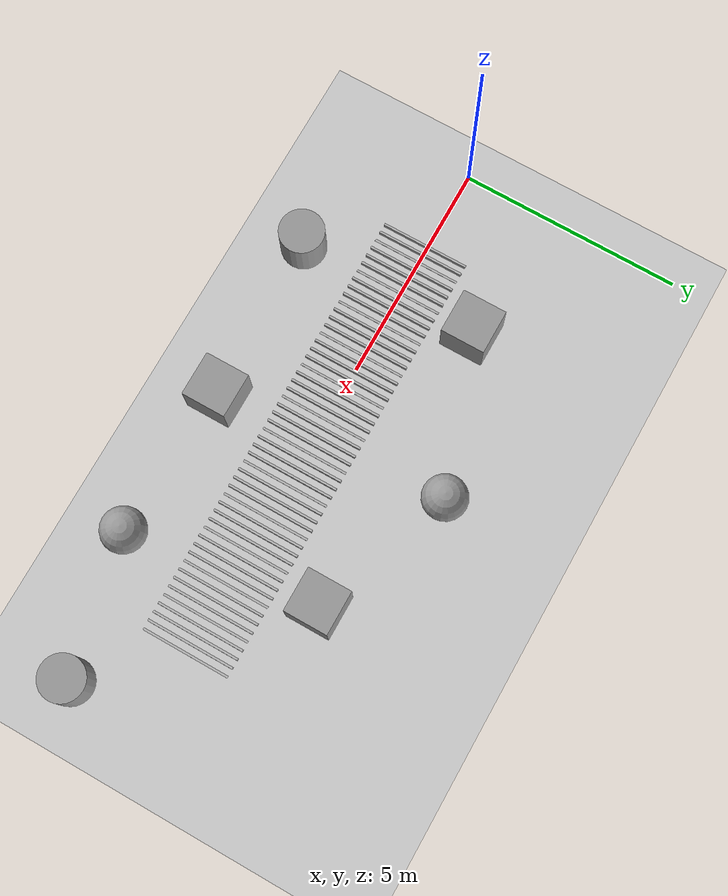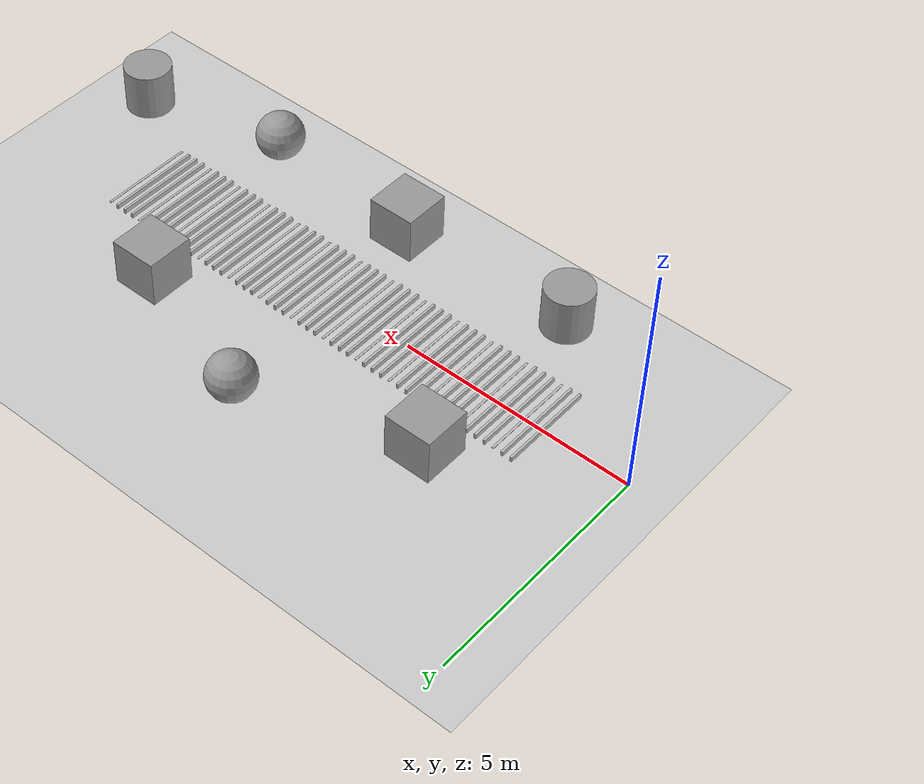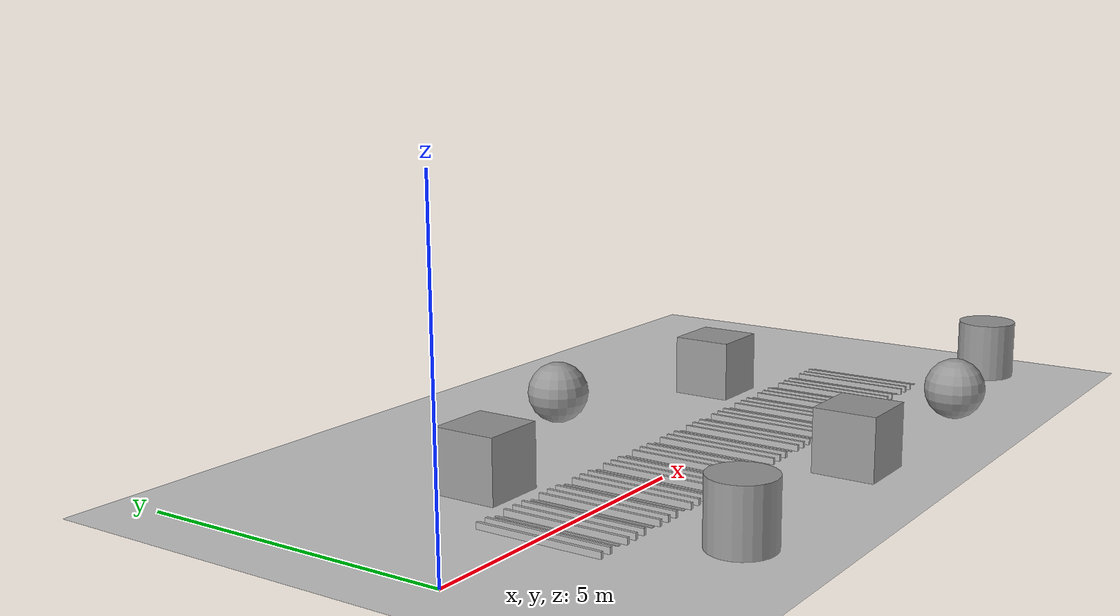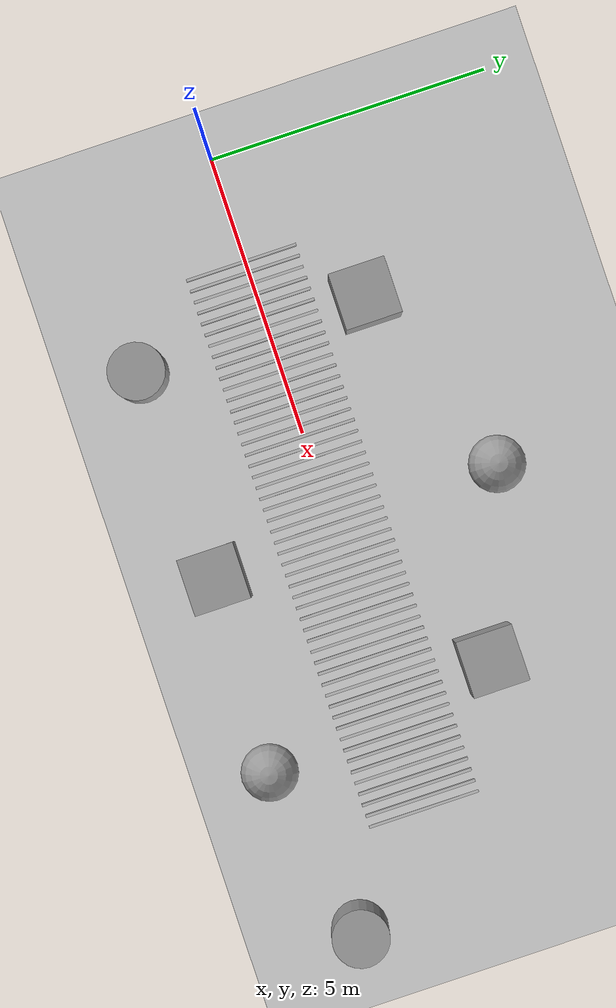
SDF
<sdf version="1.6">
 <world name="default">
  <light name="sun" type="directional">
   <pose>0 0 10 0 -0 0</pose>
   <diffuse>0.8 0.8 0.8 1</diffuse>
   <specular>0.2 0.2 0.2 1</specular>
   <attenuation>
    <range>1000</range>
    <constant>0.9</constant>
    <linear>0.01</linear>
    <quadratic>0.001</quadratic>
   </attenuation>
   <direction>-0.5 0.1 -0.9</direction>
  </light>
  <model name="ground_plane">
   <static>1</static>
   <link name="link">
    <collision name="collision">
     <geometry><plane><normal>0 0 1</normal><size>100 100</size></plane></geometry>
     <surface>
      <contact><collide_bitmask>65535</collide_bitmask></contact>
      <friction><ode><mu>100</mu><mu2>50</mu2></ode></friction>
     </surface>
    </collision>
    <visual name="visual">
     <cast_shadows>0</cast_shadows>
     <geometry><plane><normal>0 0 1</normal><size>100 100</size></plane></geometry>
     <material>
      <script><uri>file://media/materials/scripts/gazebo.material</uri><name>Gazebo/Grey</name></script>
     </material>
    </visual>
   </link>
  </model>
  <gravity>0 0 -9.8</gravity>
  <magnetic_field>6e-06 2.3e-05 -4.2e-05</magnetic_field>
  <atmosphere type="adiabatic"/>
  <physics name="default_physics" default="0" type="ode">
   <max_step_size>0.001</max_step_size>
   <real_time_factor>1</real_time_factor>
   <real_time_update_rate>1000</real_time_update_rate>
  </physics>
  <scene><ambient>0.4 0.4 0.4 1</ambient><background>0.7 0.7 0.7 1</background><shadows>1</shadows></scene>
  <audio><device>default</device></audio>
  <spherical_coordinates>
   <surface_model>EARTH_WGS84</surface_model>
   <latitude_deg>0</latitude_deg>
   <longitude_deg>0</longitude_deg>
   <elevation>0</elevation>
   <heading_deg>0</heading_deg>
  </spherical_coordinates>
  <model name="my_model">
   <link name="bot_wall0">
    <visual name="visual">
     <geometry><box><size>0.05 2 0.1</size></box></geometry>
     <material><script><uri>model://hallway/materials/scripts</uri><name>feature_3</name></script></material>
    </visual>
    <collision name="collision"><geometry><box><size>0.05 2 0.1</size></box></geometry></collision>
    <inertial>
     <inertia><ixx>1</ixx><ixy>0</ixy><ixz>0</ixz><iyy>1</iyy><iyz>0</iyz><izz>1</izz></inertia>
     <mass>1</mass>
    </inertial>
   </link>
   <link name="bot_wall1">
    <pose>0.2 0 0 0 -0 0</pose>
    <visual name="visual">
     <geometry><box><size>0.05 2 0.1</size></box></geometry>
     <material><script><uri>model://hallway/materials/scripts</uri><name>feature_3</name></script></material>
    </visual>
    <collision name="collision"><geometry><box><size>0.05 2 0.1</size></box></geometry></collision>
    <inertial>
     <inertia><ixx>1</ixx><ixy>0</ixy><ixz>0</ixz><iyy>1</iyy><iyz>0</iyz><izz>1</izz></inertia>
     <mass>1</mass>
    </inertial>
   </link>
   <link name="bot_wall2">
    <pose>0.4 0 0 0 -0 0</pose>
    <visual name="visual">
     <geometry><box><size>0.05 2 0.01</size></box></geometry>
     <material><script><uri>model://hallway/materials/scripts</uri><name>feature_3</name></script></material>
    </visual>
    <collision name="collision"><geometry><box><size>0.05 2 0.01</size></box></geometry></collision>
    <inertial>
     <inertia><ixx>1</ixx><ixy>0</ixy><ixz>0</ixz><iyy>1</iyy><iyz>0</iyz><izz>1</izz></inertia>
     <mass>1</mass>
    </inertial>
   </link>
   <link name="bot_wall3">
    <pose>0.6 0 0 0 -0 0</pose>
    <visual name="visual">
     <geometry><box><size>0.05 2 0.1</size></box></geometry>
     <material><script><uri>model://hallway/materials/scripts</uri><name>feature_3</name></script></material>
    </visual>
    <collision name="collision"><geometry><box><size>0.05 2 0.1</size></box></geometry></collision>
    <inertial>
     <inertia><ixx>1</ixx><ixy>0</ixy><ixz>0</ixz><iyy>1</iyy><iyz>0</iyz><izz>1</izz></inertia>
     <mass>1</mass>
    </inertial>
   </link>
   <link name="bot_wall4">
    <pose>0.8 0 0 0 -0 0</pose>
    <visual name="visual">
     <geometry><box><size>0.05 2 0.1</size></box></geometry>
     <material><script><uri>model://hallway/materials/scripts</uri><name>feature_3</name></script></material>
    </visual>
    <collision name="collision"><geometry><box><size>0.05 2 0.1</size></box></geometry></collision>
    <inertial>
     <inertia><ixx>1</ixx><ixy>0</ixy><ixz>0</ixz><iyy>1</iyy><iyz>0</iyz><izz>1</izz></inertia>
     <mass>1</mass>
    </inertial>
   </link>
   <link name="bot_wall5">
    <pose>1 0 0 0 -0 0</pose>
    <visual name="visual">
     <geometry><box><size>0.05 2 0.1</size></box></geometry>
     <material><script><uri>model://hallway/materials/scripts</uri><name>feature_3</name></script></material>
    </visual>
    <collision name="collision"><geometry><box><size>0.05 2 0.1</size></box></geometry></collision>
    <inertial>
     <inertia><ixx>1</ixx><ixy>0</ixy><ixz>0</ixz><iyy>1</iyy><iyz>0</iyz><izz>1</izz></inertia>
     <mass>1</mass>
    </inertial>
   </link>
   <link name="bot_wall6">
    <pose>1.2 0 0 0 -0 0</pose>
    <visual name="visual">
     <geometry><box><size>0.05 2 0.01</size></box></geometry>
     <material><script><uri>model://hallway/materials/scripts</uri><name>feature_3</name></script></material>
    </visual>
    <collision name="collision"><geometry><box><size>0.05 2 0.01</size></box></geometry></collision>
    <inertial>
     <inertia><ixx>1</ixx><ixy>0</ixy><ixz>0</ixz><iyy>1</iyy><iyz>0</iyz><izz>1</izz></inertia>
     <mass>1</mass>
    </inertial>
   </link>
   <link name="bot_wall7">
    <pose>1.4 0 0 0 -0 0</pose>
    <visual name="visual">
     <geometry><box><size>0.05 2 0.1</size></box></geometry>
     <material><script><uri>model://hallway/materials/scripts</uri><name>feature_3</name></script></material>
    </visual>
    <collision name="collision"><geometry><box><size>0.05 2 0.1</size></box></geometry></collision>
    <inertial>
     <inertia><ixx>1</ixx><ixy>0</ixy><ixz>0</ixz><iyy>1</iyy><iyz>0</iyz><izz>1</izz></inertia>
     <mass>1</mass>
    </inertial>
   </link>
   <link name="bot_wall8">
    <pose>1.6 0 0 0 -0 0</pose>
    <visual name="visual">
     <geometry><box><size>0.05 2 0.1</size></box></geometry>
     <material><script><uri>model://hallway/materials/scripts</uri><name>feature_3</name></script></material>
    </visual>
    <collision name="collision"><geometry><box><size>0.05 2 0.1</size></box></geometry></collision>
    <inertial>
     <inertia><ixx>1</ixx><ixy>0</ixy><ixz>0</ixz><iyy>1</iyy><iyz>0</iyz><izz>1</izz></inertia>
     <mass>1</mass>
    </inertial>
   </link>
   <link name="bot_wall9">
    <pose>1.8 0 0 0 -0 0</pose>
    <visual name="visual">
     <geometry><box><size>0.05 2 0.1</size></box></geometry>
     <material><script><uri>model://hallway/materials/scripts</uri><name>feature_3</name></script></material>
    </visual>
    <collision name="collision"><geometry><box><size>0.05 2 0.1</size></box></geometry></collision>
    <inertial>
     <inertia><ixx>1</ixx><ixy>0</ixy><ixz>0</ixz><iyy>1</iyy><iyz>0</iyz><izz>1</izz></inertia>
     <mass>1</mass>
    </inertial>
   </link>
   <link name="bot_wall10">
    <pose>2 0 0 0 -0 0</pose>
    <visual name="visual">
     <geometry><box><size>0.05 2 0.01</size></box></geometry>
     <material><script><uri>model://hallway/materials/scripts</uri><name>feature_3</name></script></material>
    </visual>
    <collision name="collision"><geometry><box><size>0.05 2 0.01</size></box></geometry></collision>
    <inertial>
     <inertia><ixx>1</ixx><ixy>0</ixy><ixz>0</ixz><iyy>1</iyy><iyz>0</iyz><izz>1</izz></inertia>
     <mass>1</mass>
    </inertial>
   </link>
   <link name="bot_wall11">
    <pose>2.2 0 0 0 -0 0</pose>
    <visual name="visual">
     <geometry><box><size>0.05 2 0.1</size></box></geometry>
     <material><script><uri>model://hallway/materials/scripts</uri><name>feature_3</name></script></material>
    </visual>
    <collision name="collision"><geometry><box><size>0.05 2 0.1</size></box></geometry></collision>
    <inertial>
     <inertia><ixx>1</ixx><ixy>0</ixy><ixz>0</ixz><iyy>1</iyy><iyz>0</iyz><izz>1</izz></inertia>
     <mass>1</mass>
    </inertial>
   </link>
   <link name="bot_wall12">
    <pose>2.4 0 0 0 -0 0</pose>
    <visual name="visual">
     <geometry><box><size>0.05 2 0.1</size></box></geometry>
     <material><script><uri>model://hallway/materials/scripts</uri><name>feature_3</name></script></material>
    </visual>
    <collision name="collision"><geometry><box><size>0.05 2 0.1</size></box></geometry></collision>
    <inertial>
     <inertia><ixx>1</ixx><ixy>0</ixy><ixz>0</ixz><iyy>1</iyy><iyz>0</iyz><izz>1</izz></inertia>
     <mass>1</mass>
    </inertial>
   </link>
   <link name="bot_wall13">
    <pose>2.6 0 0 0 -0 0</pose>
    <visual name="visual">
     <geometry><box><size>0.05 2 0.1</size></box></geometry>
     <material><script><uri>model://hallway/materials/scripts</uri><name>feature_3</name></script></material>
    </visual>
    <collision name="collision"><geometry><box><size>0.05 2 0.1</size></box></geometry></collision>
    <inertial>
     <inertia><ixx>1</ixx><ixy>0</ixy><ixz>0</ixz><iyy>1</iyy><iyz>0</iyz><izz>1</izz></inertia>
     <mass>1</mass>
    </inertial>
   </link>
   <link name="bot_wall14">
    <pose>2.8 0 0 0 -0 0</pose>
    <visual name="visual">
     <geometry><box><size>0.05 2 0.01</size></box></geometry>
     <material><script><uri>model://hallway/materials/scripts</uri><name>feature_3</name></script></material>
    </visual>
    <collision name="collision"><geometry><box><size>0.05 2 0.01</size></box></geometry></collision>
    <inertial>
     <inertia><ixx>1</ixx><ixy>0</ixy><ixz>0</ixz><iyy>1</iyy><iyz>0</iyz><izz>1</izz></inertia>
     <mass>1</mass>
    </inertial>
   </link>
   <link name="bot_wall15">
    <pose>3 0 0 0 -0 0</pose>
    <visual name="visual">
     <geometry><box><size>0.05 2 0.1</size></box></geometry>
     <material><script><uri>model://hallway/materials/scripts</uri><name>feature_3</name></script></material>
    </visual>
    <collision name="collision"><geometry><box><size>0.05 2 0.1</size></box></geometry></collision>
    <inertial>
     <inertia><ixx>1</ixx><ixy>0</ixy><ixz>0</ixz><iyy>1</iyy><iyz>0</iyz><izz>1</izz></inertia>
     <mass>1</mass>
    </inertial>
   </link>
   <link name="bot_wall16">
    <pose>3.2 0 0 0 -0 0</pose>
    <visual name="visual">
     <geometry><box><size>0.05 2 0.1</size></box></geometry>
     <material><script><uri>model://hallway/materials/scripts</uri><name>feature_3</name></script></material>
    </visual>
    <collision name="collision"><geometry><box><size>0.05 2 0.1</size></box></geometry></collision>
    <inertial>
     <inertia><ixx>1</ixx><ixy>0</ixy><ixz>0</ixz><iyy>1</iyy><iyz>0</iyz><izz>1</izz></inertia>
     <mass>1</mass>
    </inertial>
   </link>
   <link name="bot_wall17">
    <pose>3.4 0 0 0 -0 0</pose>
    <visual name="visual">
     <geometry><box><size>0.05 2 0.1</size></box></geometry>
     <material><script><uri>model://hallway/materials/scripts</uri><name>feature_3</name></script></material>
    </visual>
    <collision name="collision"><geometry><box><size>0.05 2 0.1</size></box></geometry></collision>
    <inertial>
     <inertia><ixx>1</ixx><ixy>0</ixy><ixz>0</ixz><iyy>1</iyy><iyz>0</iyz><izz>1</izz></inertia>
     <mass>1</mass>
    </inertial>
   </link>
   <link name="bot_wall18">
    <pose>3.6 0 0 0 -0 0</pose>
    <visual name="visual">
     <geometry><box><size>0.05 2 0.01</size></box></geometry>
     <material><script><uri>model://hallway/materials/scripts</uri><name>feature_3</name></script></material>
    </visual>
    <collision name="collision"><geometry><box><size>0.05 2 0.01</size></box></geometry></collision>
    <inertial>
     <inertia><ixx>1</ixx><ixy>0</ixy><ixz>0</ixz><iyy>1</iyy><iyz>0</iyz><izz>1</izz></inertia>
     <mass>1</mass>
    </inertial>
   </link>
   <link name="bot_wall19">
    <pose>3.8 0 0 0 -0 0</pose>
    <visual name="visual">
     <geometry><box><size>0.05 2 0.1</size></box></geometry>
     <material><script><uri>model://hallway/materials/scripts</uri><name>feature_3</name></script></material>
    </visual>
    <collision name="collision"><geometry><box><size>0.05 2 0.1</size></box></geometry></collision>
    <inertial>
     <inertia><ixx>1</ixx><ixy>0</ixy><ixz>0</ixz><iyy>1</iyy><iyz>0</iyz><izz>1</izz></inertia>
     <mass>1</mass>
    </inertial>
   </link>
   <link name="bot_wall20">
    <pose>4 0 0 0 -0 0</pose>
    <visual name="visual">
     <geometry><box><size>0.05 2 0.1</size></box></geometry>
     <material><script><uri>model://hallway/materials/scripts</uri><name>feature_3</name></script></material>
    </visual>
    <collision name="collision"><geometry><box><size>0.05 2 0.1</size></box></geometry></collision>
    <inertial>
     <inertia><ixx>1</ixx><ixy>0</ixy><ixz>0</ixz><iyy>1</iyy><iyz>0</iyz><izz>1</izz></inertia>
     <mass>1</mass>
    </inertial>
   </link>
   <link name="bot_wall21">
    <pose>4.2 0 0 0 -0 0</pose>
    <visual name="visual">
     <geometry><box><size>0.05 2 0.1</size></box></geometry>
     <material><script><uri>model://hallway/materials/scripts</uri><name>feature_3</name></script></material>
    </visual>
    <collision name="collision"><geometry><box><size>0.05 2 0.1</size></box></geometry></collision>
    <inertial>
     <inertia><ixx>1</ixx><ixy>0</ixy><ixz>0</ixz><iyy>1</iyy><iyz>0</iyz><izz>1</izz></inertia>
     <mass>1</mass>
    </inertial>
   </link>
   <link name="bot_wall22">
    <pose>4.4 0 0 0 -0 0</pose>
    <visual name="visual">
     <geometry><box><size>0.05 2 0.01</size></box></geometry>
     <material><script><uri>model://hallway/materials/scripts</uri><name>feature_3</name></script></material>
    </visual>
    <collision name="collision"><geometry><box><size>0.05 2 0.01</size></box></geometry></collision>
    <inertial>
     <inertia><ixx>1</ixx><ixy>0</ixy><ixz>0</ixz><iyy>1</iyy><iyz>0</iyz><izz>1</izz></inertia>
     <mass>1</mass>
    </inertial>
   </link>
   <link name="bot_wall23">
    <pose>4.6 0 0 0 -0 0</pose>
    <visual name="visual">
     <geometry><box><size>0.05 2 0.1</size></box></geometry>
     <material><script><uri>model://hallway/materials/scripts</uri><name>feature_3</name></script></material>
    </visual>
    <collision name="collision"><geometry><box><size>0.05 2 0.1</size></box></geometry></collision>
    <inertial>
     <inertia><ixx>1</ixx><ixy>0</ixy><ixz>0</ixz><iyy>1</iyy><iyz>0</iyz><izz>1</izz></inertia>
     <mass>1</mass>
    </inertial>
   </link>
   <link name="bot_wall24">
    <pose>4.8 0 0 0 -0 0</pose>
    <visual name="visual">
     <geometry><box><size>0.05 2 0.1</size></box></geometry>
     <material><script><uri>model://hallway/materials/scripts</uri><name>feature_3</name></script></material>
    </visual>
    <collision name="collision"><geometry><box><size>0.05 2 0.1</size></box></geometry></collision>
    <inertial>
     <inertia><ixx>1</ixx><ixy>0</ixy><ixz>0</ixz><iyy>1</iyy><iyz>0</iyz><izz>1</izz></inertia>
     <mass>1</mass>
    </inertial>
   </link>
   <link name="bot_wall25">
    <pose>5 0 0 0 -0 0</pose>
    <visual name="visual">
     <geometry><box><size>0.05 2 0.1</size></box></geometry>
     <material><script><uri>model://hallway/materials/scripts</uri><name>feature_3</name></script></material>
    </visual>
    <collision name="collision"><geometry><box><size>0.05 2 0.1</size></box></geometry></collision>
    <inertial>
     <inertia><ixx>1</ixx><ixy>0</ixy><ixz>0</ixz><iyy>1</iyy><iyz>0</iyz><izz>1</izz></inertia>
     <mass>1</mass>
    </inertial>
   </link>
   <link name="bot_wall26">
    <pose>5.2 0 0 0 -0 0</pose>
    <visual name="visual">
     <geometry><box><size>0.05 2 0.01</size></box></geometry>
     <material><script><uri>model://hallway/materials/scripts</uri><name>feature_3</name></script></material>
    </visual>
    <collision name="collision"><geometry><box><size>0.05 2 0.01</size></box></geometry></collision>
    <inertial>
     <inertia><ixx>1</ixx><ixy>0</ixy><ixz>0</ixz><iyy>1</iyy><iyz>0</iyz><izz>1</izz></inertia>
     <mass>1</mass>
    </inertial>
   </link>
   <link name="bot_wall27">
    <pose>5.4 0 0 0 -0 0</pose>
    <visual name="visual">
     <geometry><box><size>0.05 2 0.1</size></box></geometry>
     <material><script><uri>model://hallway/materials/scripts</uri><name>feature_3</name></script></material>
    </visual>
    <collision name="collision"><geometry><box><size>0.05 2 0.1</size></box></geometry></collision>
    <inertial>
     <inertia><ixx>1</ixx><ixy>0</ixy><ixz>0</ixz><iyy>1</iyy><iyz>0</iyz><izz>1</izz></inertia>
     <mass>1</mass>
    </inertial>
   </link>
   <link name="bot_wall28">
    <pose>5.6 0 0 0 -0 0</pose>
    <visual name="visual">
     <geometry><box><size>0.05 2 0.1</size></box></geometry>
     <material><script><uri>model://hallway/materials/scripts</uri><name>feature_3</name></script></material>
    </visual>
    <collision name="collision"><geometry><box><size>0.05 2 0.1</size></box></geometry></collision>
    <inertial>
     <inertia><ixx>1</ixx><ixy>0</ixy><ixz>0</ixz><iyy>1</iyy><iyz>0</iyz><izz>1</izz></inertia>
     <mass>1</mass>
    </inertial>
   </link>
   <link name="bot_wall29">
    <pose>5.8 0 0 0 -0 0</pose>
    <visual name="visual">
     <geometry><box><size>0.05 2 0.1</size></box></geometry>
     <material><script><uri>model://hallway/materials/scripts</uri><name>feature_3</name></script></material>
    </visual>
    <collision name="collision"><geometry><box><size>0.05 2 0.1</size></box></geometry></collision>
    <inertial>
     <inertia><ixx>1</ixx><ixy>0</ixy><ixz>0</ixz><iyy>1</iyy><iyz>0</iyz><izz>1</izz></inertia>
     <mass>1</mass>
    </inertial>
   </link>
   <link name="bot_wall30">
    <pose>6 0 0 0 -0 0</pose>
    <visual name="visual">
     <geometry><box><size>0.05 2 0.01</size></box></geometry>
     <material><script><uri>model://hallway/materials/scripts</uri><name>feature_3</name></script></material>
    </visual>
    <collision name="collision"><geometry><box><size>0.05 2 0.01</size></box></geometry></collision>
    <inertial>
     <inertia><ixx>1</ixx><ixy>0</ixy><ixz>0</ixz><iyy>1</iyy><iyz>0</iyz><izz>1</izz></inertia>
     <mass>1</mass>
    </inertial>
   </link>
   <link name="bot_wall31">
    <pose>6.2 0 0 0 -0 0</pose>
    <visual name="visual">
     <geometry><box><size>0.05 2 0.1</size></box></geometry>
     <material><script><uri>model://hallway/materials/scripts</uri><name>feature_3</name></script></material>
    </visual>
    <collision name="collision"><geometry><box><size>0.05 2 0.1</size></box></geometry></collision>
    <inertial>
     <inertia><ixx>1</ixx><ixy>0</ixy><ixz>0</ixz><iyy>1</iyy><iyz>0</iyz><izz>1</izz></inertia>
     <mass>1</mass>
    </inertial>
   </link>
   <link name="bot_wall32">
    <pose>6.4 0 0 0 -0 0</pose>
    <visual name="visual">
     <geometry><box><size>0.05 2 0.1</size></box></geometry>
     <material><script><uri>model://hallway/materials/scripts</uri><name>feature_3</name></script></material>
    </visual>
    <collision name="collision"><geometry><box><size>0.05 2 0.1</size></box></geometry></collision>
    <inertial>
     <inertia><ixx>1</ixx><ixy>0</ixy><ixz>0</ixz><iyy>1</iyy><iyz>0</iyz><izz>1</izz></inertia>
     <mass>1</mass>
    </inertial>
   </link>
   <link name="bot_wall33">
    <pose>6.6 0 0 0 -0 0</pose>
    <visual name="visual">
     <geometry><box><size>0.05 2 0.1</size></box></geometry>
     <material><script><uri>model://hallway/materials/scripts</uri><name>feature_3</name></script></material>
    </visual>
    <collision name="collision"><geometry><box><size>0.05 2 0.1</size></box></geometry></collision>
    <inertial>
     <inertia><ixx>1</ixx><ixy>0</ixy><ixz>0</ixz><iyy>1</iyy><iyz>0</iyz><izz>1</izz></inertia>
     <mass>1</mass>
    </inertial>
   </link>
   <link name="bot_wall34">
    <pose>6.8 0 0 0 -0 0</pose>
    <visual name="visual">
     <geometry><box><size>0.05 2 0.01</size></box></geometry>
     <material><script><uri>model://hallway/materials/scripts</uri><name>feature_3</name></script></material>
    </visual>
    <collision name="collision"><geometry><box><size>0.05 2 0.01</size></box></geometry></collision>
    <inertial>
     <inertia><ixx>1</ixx><ixy>0</ixy><ixz>0</ixz><iyy>1</iyy><iyz>0</iyz><izz>1</izz></inertia>
     <mass>1</mass>
    </inertial>
   </link>
   <link name="bot_wall35">
    <pose>7 0 0 0 -0 0</pose>
    <visual name="visual">
     <geometry><box><size>0.05 2 0.1</size></box></geometry>
     <material><script><uri>model://hallway/materials/scripts</uri><name>feature_3</name></script></material>
    </visual>
    <collision name="collision"><geometry><box><size>0.05 2 0.1</size></box></geometry></collision>
    <inertial>
     <inertia><ixx>1</ixx><ixy>0</ixy><ixz>0</ixz><iyy>1</iyy><iyz>0</iyz><izz>1</izz></inertia>
     <mass>1</mass>
    </inertial>
   </link>
   <link name="bot_wall36">
    <pose>7.2 0 0 0 -0 0</pose>
    <visual name="visual">
     <geometry><box><size>0.05 2 0.1</size></box></geometry>
     <material><script><uri>model://hallway/materials/scripts</uri><name>feature_3</name></script></material>
    </visual>
    <collision name="collision"><geometry><box><size>0.05 2 0.1</size></box></geometry></collision>
    <inertial>
     <inertia><ixx>1</ixx><ixy>0</ixy><ixz>0</ixz><iyy>1</iyy><iyz>0</iyz><izz>1</izz></inertia>
     <mass>1</mass>
    </inertial>
   </link>
   <link name="bot_wall37">
    <pose>7.4 0 0 0 -0 0</pose>
    <visual name="visual">
     <geometry><box><size>0.05 2 0.1</size></box></geometry>
     <material><script><uri>model://hallway/materials/scripts</uri><name>feature_3</name></script></material>
    </visual>
    <collision name="collision"><geometry><box><size>0.05 2 0.1</size></box></geometry></collision>
    <inertial>
     <inertia><ixx>1</ixx><ixy>0</ixy><ixz>0</ixz><iyy>1</iyy><iyz>0</iyz><izz>1</izz></inertia>
     <mass>1</mass>
    </inertial>
   </link>
   <link name="bot_wall38">
    <pose>7.6 0 0 0 -0 0</pose>
    <visual name="visual">
     <geometry><box><size>0.05 2 0.01</size></box></geometry>
     <material><script><uri>model://hallway/materials/scripts</uri><name>feature_3</name></script></material>
    </visual>
    <collision name="collision"><geometry><box><size>0.05 2 0.01</size></box></geometry></collision>
    <inertial>
     <inertia><ixx>1</ixx><ixy>0</ixy><ixz>0</ixz><iyy>1</iyy><iyz>0</iyz><izz>1</izz></inertia>
     <mass>1</mass>
    </inertial>
   </link>
   <link name="bot_wall39">
    <pose>7.8 0 0 0 -0 0</pose>
    <visual name="visual">
     <geometry><box><size>0.05 2 0.1</size></box></geometry>
     <material><script><uri>model://hallway/materials/scripts</uri><name>feature_3</name></script></material>
    </visual>
    <collision name="collision"><geometry><box><size>0.05 2 0.1</size></box></geometry></collision>
    <inertial>
     <inertia><ixx>1</ixx><ixy>0</ixy><ixz>0</ixz><iyy>1</iyy><iyz>0</iyz><izz>1</izz></inertia>
     <mass>1</mass>
    </inertial>
   </link>
   <link name="bot_wall40">
    <pose>8 0 0 0 -0 0</pose>
    <visual name="visual">
     <geometry><box><size>0.05 2 0.1</size></box></geometry>
     <material><script><uri>model://hallway/materials/scripts</uri><name>feature_3</name></script></material>
    </visual>
    <collision name="collision"><geometry><box><size>0.05 2 0.1</size></box></geometry></collision>
    <inertial>
     <inertia><ixx>1</ixx><ixy>0</ixy><ixz>0</ixz><iyy>1</iyy><iyz>0</iyz><izz>1</izz></inertia>
     <mass>1</mass>
    </inertial>
   </link>
   <link name="bot_wall41">
    <pose>8.2 0 0 0 -0 0</pose>
    <visual name="visual">
     <geometry><box><size>0.05 2 0.1</size></box></geometry>
     <material><script><uri>model://hallway/materials/scripts</uri><name>feature_3</name></script></material>
    </visual>
    <collision name="collision"><geometry><box><size>0.05 2 0.1</size></box></geometry></collision>
    <inertial>
     <inertia><ixx>1</ixx><ixy>0</ixy><ixz>0</ixz><iyy>1</iyy><iyz>0</iyz><izz>1</izz></inertia>
     <mass>1</mass>
    </inertial>
   </link>
   <link name="bot_wall42">
    <pose>8.4 0 0 0 -0 0</pose>
    <visual name="visual">
     <geometry><box><size>0.05 2 0.01</size></box></geometry>
     <material><script><uri>model://hallway/materials/scripts</uri><name>feature_3</name></script></material>
    </visual>
    <collision name="collision"><geometry><box><size>0.05 2 0.01</size></box></geometry></collision>
    <inertial>
     <inertia><ixx>1</ixx><ixy>0</ixy><ixz>0</ixz><iyy>1</iyy><iyz>0</iyz><izz>1</izz></inertia>
     <mass>1</mass>
    </inertial>
   </link>
   <link name="bot_wall43">
    <pose>8.6 0 0 0 -0 0</pose>
    <visual name="visual">
     <geometry><box><size>0.05 2 0.1</size></box></geometry>
     <material><script><uri>model://hallway/materials/scripts</uri><name>feature_3</name></script></material>
    </visual>
    <collision name="collision"><geometry><box><size>0.05 2 0.1</size></box></geometry></collision>
    <inertial>
     <inertia><ixx>1</ixx><ixy>0</ixy><ixz>0</ixz><iyy>1</iyy><iyz>0</iyz><izz>1</izz></inertia>
     <mass>1</mass>
    </inertial>
   </link>
   <link name="bot_wall44">
    <pose>8.8 0 0 0 -0 0</pose>
    <visual name="visual">
     <geometry><box><size>0.05 2 0.1</size></box></geometry>
     <material><script><uri>model://hallway/materials/scripts</uri><name>feature_3</name></script></material>
    </visual>
    <collision name="collision"><geometry><box><size>0.05 2 0.1</size></box></geometry></collision>
    <inertial>
     <inertia><ixx>1</ixx><ixy>0</ixy><ixz>0</ixz><iyy>1</iyy><iyz>0</iyz><izz>1</izz></inertia>
     <mass>1</mass>
    </inertial>
   </link>
   <link name="bot_wall45">
    <pose>9 0 0 0 -0 0</pose>
    <visual name="visual">
     <geometry><box><size>0.05 2 0.1</size></box></geometry>
     <material><script><uri>model://hallway/materials/scripts</uri><name>feature_3</name></script></material>
    </visual>
    <collision name="collision"><geometry><box><size>0.05 2 0.1</size></box></geometry></collision>
    <inertial>
     <inertia><ixx>1</ixx><ixy>0</ixy><ixz>0</ixz><iyy>1</iyy><iyz>0</iyz><izz>1</izz></inertia>
     <mass>1</mass>
    </inertial>
   </link>
   <link name="bot_wall46">
    <pose>9.2 0 0 0 -0 0</pose>
    <visual name="visual">
     <geometry><box><size>0.05 2 0.01</size></box></geometry>
     <material><script><uri>model://hallway/materials/scripts</uri><name>feature_3</name></script></material>
    </visual>
    <collision name="collision"><geometry><box><size>0.05 2 0.01</size></box></geometry></collision>
    <inertial>
     <inertia><ixx>1</ixx><ixy>0</ixy><ixz>0</ixz><iyy>1</iyy><iyz>0</iyz><izz>1</izz></inertia>
     <mass>1</mass>
    </inertial>
   </link>
   <link name="bot_wall47">
    <pose>9.4 0 0 0 -0 0</pose>
    <visual name="visual">
     <geometry><box><size>0.05 2 0.1</size></box></geometry>
     <material><script><uri>model://hallway/materials/scripts</uri><name>feature_3</name></script></material>
    </visual>
    <collision name="collision"><geometry><box><size>0.05 2 0.1</size></box></geometry></collision>
    <inertial>
     <inertia><ixx>1</ixx><ixy>0</ixy><ixz>0</ixz><iyy>1</iyy><iyz>0</iyz><izz>1</izz></inertia>
     <mass>1</mass>
    </inertial>
   </link>
   <link name="bot_wall48">
    <pose>9.6 0 0 0 -0 0</pose>
    <visual name="visual">
     <geometry><box><size>0.05 2 0.1</size></box></geometry>
     <material><script><uri>model://hallway/materials/scripts</uri><name>feature_3</name></script></material>
    </visual>
    <collision name="collision"><geometry><box><size>0.05 2 0.1</size></box></geometry></collision>
    <inertial>
     <inertia><ixx>1</ixx><ixy>0</ixy><ixz>0</ixz><iyy>1</iyy><iyz>0</iyz><izz>1</izz></inertia>
     <mass>1</mass>
    </inertial>
   </link>
   <link name="bot_wall49">
    <pose>9.8 0 0 0 -0 0</pose>
    <visual name="visual">
     <geometry><box><size>0.05 2 0.1</size></box></geometry>
     <material><script><uri>model://hallway/materials/scripts</uri><name>feature_3</name></script></material>
    </visual>
    <collision name="collision"><geometry><box><size>0.05 2 0.1</size></box></geometry></collision>
    <inertial>
     <inertia><ixx>1</ixx><ixy>0</ixy><ixz>0</ixz><iyy>1</iyy><iyz>0</iyz><izz>1</izz></inertia>
     <mass>1</mass>
    </inertial>
   </link>
   <link name="bot_wall50">
    <pose>10 0 0 0 -0 0</pose>
    <visual name="visual">
     <geometry><box><size>0.05 2 0.01</size></box></geometry>
     <material><script><uri>model://hallway/materials/scripts</uri><name>feature_3</name></script></material>
    </visual>
    <collision name="collision"><geometry><box><size>0.05 2 0.01</size></box></geometry></collision>
    <inertial>
     <inertia><ixx>1</ixx><ixy>0</ixy><ixz>0</ixz><iyy>1</iyy><iyz>0</iyz><izz>1</izz></inertia>
     <mass>1</mass>
    </inertial>
   </link>
   <joint name="joint0" type="fixed"><parent>bot_wall0</parent><child>bot_wall1</child></joint>
   <joint name="joint1" type="fixed"><parent>bot_wall1</parent><child>bot_wall2</child></joint>
   <joint name="joint2" type="fixed"><parent>bot_wall2</parent><child>bot_wall3</child></joint>
   <joint name="joint3" type="fixed"><parent>bot_wall3</parent><child>bot_wall4</child></joint>
   <joint name="joint4" type="fixed"><parent>bot_wall4</parent><child>bot_wall5</child></joint>
   <joint name="joint5" type="fixed"><parent>bot_wall5</parent><child>bot_wall6</child></joint>
   <joint name="joint6" type="fixed"><parent>bot_wall6</parent><child>bot_wall7</child></joint>
   <joint name="joint7" type="fixed"><parent>bot_wall7</parent><child>bot_wall8</child></joint>
   <joint name="joint8" type="fixed"><parent>bot_wall8</parent><child>bot_wall9</child></joint>
   <joint name="joint9" type="fixed"><parent>bot_wall9</parent><child>bot_wall10</child></joint>
   <joint name="joint10" type="fixed"><parent>bot_wall10</parent><child>bot_wall11</child></joint>
   <joint name="joint11" type="fixed"><parent>bot_wall11</parent><child>bot_wall12</child></joint>
   <joint name="joint12" type="fixed"><parent>bot_wall12</parent><child>bot_wall13</child></joint>
   <joint name="joint13" type="fixed"><parent>bot_wall13</parent><child>bot_wall14</child></joint>
   <joint name="joint14" type="fixed"><parent>bot_wall14</parent><child>bot_wall15</child></joint>
   <joint name="joint15" type="fixed"><parent>bot_wall15</parent><child>bot_wall16</child></joint>
   <joint name="joint16" type="fixed"><parent>bot_wall16</parent><child>bot_wall17</child></joint>
   <joint name="joint17" type="fixed"><parent>bot_wall17</parent><child>bot_wall18</child></joint>
   <joint name="joint18" type="fixed"><parent>bot_wall18</parent><child>bot_wall19</child></joint>
   <joint name="joint19" type="fixed"><parent>bot_wall19</parent><child>bot_wall20</child></joint>
   <joint name="joint20" type="fixed"><parent>bot_wall20</parent><child>bot_wall21</child></joint>
   <joint name="joint21" type="fixed"><parent>bot_wall21</parent><child>bot_wall22</child></joint>
   <joint name="joint22" type="fixed"><parent>bot_wall22</parent><child>bot_wall23</child></joint>
   <joint name="joint23" type="fixed"><parent>bot_wall23</parent><child>bot_wall24</child></joint>
   <joint name="joint24" type="fixed"><parent>bot_wall24</parent><child>bot_wall25</child></joint>
   <joint name="joint25" type="fixed"><parent>bot_wall25</parent><child>bot_wall26</child></joint>
   <joint name="joint26" type="fixed"><parent>bot_wall26</parent><child>bot_wall27</child></joint>
   <joint name="joint27" type="fixed"><parent>bot_wall27</parent><child>bot_wall28</child></joint>
   <joint name="joint28" type="fixed"><parent>bot_wall28</parent><child>bot_wall29</child></joint>
   <joint name="joint29" type="fixed"><parent>bot_wall29</parent><child>bot_wall30</child></joint>
   <joint name="joint30" type="fixed"><parent>bot_wall30</parent><child>bot_wall31</child></joint>
   <joint name="joint31" type="fixed"><parent>bot_wall31</parent><child>bot_wall32</child></joint>
   <joint name="joint32" type="fixed"><parent>bot_wall32</parent><child>bot_wall33</child></joint>
   <joint name="joint33" type="fixed"><parent>bot_wall33</parent><child>bot_wall34</child></joint>
   <joint name="joint34" type="fixed"><parent>bot_wall34</parent><child>bot_wall35</child></joint>
   <joint name="joint35" type="fixed"><parent>bot_wall35</parent><child>bot_wall36</child></joint>
   <joint name="joint36" type="fixed"><parent>bot_wall36</parent><child>bot_wall37</child></joint>
   <joint name="joint37" type="fixed"><parent>bot_wall37</parent><child>bot_wall38</child></joint>
   <joint name="joint38" type="fixed"><parent>bot_wall38</parent><child>bot_wall39</child></joint>
   <joint name="joint39" type="fixed"><parent>bot_wall39</parent><child>bot_wall40</child></joint>
   <joint name="joint40" type="fixed"><parent>bot_wall40</parent><child>bot_wall41</child></joint>
   <joint name="joint41" type="fixed"><parent>bot_wall41</parent><child>bot_wall42</child></joint>
   <joint name="joint42" type="fixed"><parent>bot_wall42</parent><child>bot_wall43</child></joint>
   <joint name="joint43" type="fixed"><parent>bot_wall43</parent><child>bot_wall44</child></joint>
   <joint name="joint44" type="fixed"><parent>bot_wall44</parent><child>bot_wall45</child></joint>
   <joint name="joint45" type="fixed"><parent>bot_wall45</parent><child>bot_wall46</child></joint>
   <joint name="joint46" type="fixed"><parent>bot_wall46</parent><child>bot_wall47</child></joint>
   <joint name="joint47" type="fixed"><parent>bot_wall47</parent><child>bot_wall48</child></joint>
   <joint name="joint48" type="fixed"><parent>bot_wall48</parent><child>bot_wall49</child></joint>
   <joint name="joint49" type="fixed"><parent>bot_wall49</parent><child>bot_wall50</child></joint>
   <pose>1.86185 -0.067912 0.05 0 1e-06 0</pose>
  </model>
  <model name="unit_box">
   <pose>3.1212 1.76078 0.499995 0 1e-05 0</pose>
   <link name="link">
    <inertial>
     <mass>1</mass>
     <inertia>
      <ixx>0.166667</ixx>
      <ixy>0</ixy>
      <ixz>0</ixz>
      <iyy>0.166667</iyy>
      <iyz>0</iyz>
      <izz>0.166667</izz>
     </inertia>
    </inertial>
    <collision name="collision"><geometry><box><size>1 1 1</size></box></geometry></collision>
    <visual name="visual">
     <geometry><box><size>1 1 1</size></box></geometry>
     <material>
      <script><name>Gazebo/Grey</name><uri>file://media/materials/scripts/gazebo.material</uri></script>
     </material>
    </visual>
   </link>
  </model>
  <model name="unit_box_0">
   <pose>9.72489 1.83194 0.499995 -1e-05 -0 -0</pose>
   <link name="link">
    <inertial>
     <mass>1</mass>
     <inertia>
      <ixx>0.166667</ixx>
      <ixy>0</ixy>
      <ixz>0</ixz>
      <iyy>0.166667</iyy>
      <iyz>0</iyz>
      <izz>0.166667</izz>
     </inertia>
    </inertial>
    <collision name="collision"><geometry><box><size>1 1 1</size></box></geometry></collision>
    <visual name="visual">
     <geometry><box><size>1 1 1</size></box></geometry>
     <material>
      <script><name>Gazebo/Grey</name><uri>file://media/materials/scripts/gazebo.material</uri></script>
     </material>
    </visual>
   </link>
  </model>
  <model name="unit_sphere">
   <pose>6.57707 3.00137 0.5 0 -0 0</pose>
   <link name="link">
    <inertial>
     <mass>1</mass>
     <inertia><ixx>0.1</ixx><ixy>0</ixy><ixz>0</ixz><iyy>0.1</iyy><iyz>0</iyz><izz>0.1</izz></inertia>
    </inertial>
    <collision name="collision"><geometry><sphere><radius>0.5</radius></sphere></geometry></collision>
    <visual name="visual">
     <geometry><sphere><radius>0.5</radius></sphere></geometry>
     <material>
      <script><name>Gazebo/Grey</name><uri>file://media/materials/scripts/gazebo.material</uri></script>
     </material>
    </visual>
   </link>
  </model>
  <model name="unit_cylinder">
   <pose>3.15082 -2.34302 0.499993 -3e-06 -4e-06 -0</pose>
   <link name="link">
    <inertial>
     <mass>1</mass>
     <inertia><ixx>0.145833</ixx><ixy>0</ixy><ixz>0</ixz><iyy>0.145833</iyy><iyz>0</iyz><izz>0.125</izz></inertia>
    </inertial>
    <collision name="collision">
     <geometry><cylinder><radius>0.5</radius><length>1</length></cylinder></geometry>
    </collision>
    <visual name="visual">
     <geometry><cylinder><radius>0.5</radius><length>1</length></cylinder></geometry>
     <material>
      <script><name>Gazebo/Grey</name><uri>file://media/materials/scripts/gazebo.material</uri></script>
     </material>
    </visual>
   </link>
  </model>
  <model name="unit_sphere_0">
   <pose>10.3658 -2.37892 0.5 0 -0 0</pose>
   <link name="link">
    <inertial>
     <mass>1</mass>
     <inertia><ixx>0.1</ixx><ixy>0</ixy><ixz>0</ixz><iyy>0.1</iyy><iyz>0</iyz><izz>0.1</izz></inertia>
    </inertial>
    <collision name="collision"><geometry><sphere><radius>0.5</radius></sphere></geometry></collision>
    <visual name="visual">
     <geometry><sphere><radius>0.5</radius></sphere></geometry>
     <material>
      <script><name>Gazebo/Grey</name><uri>file://media/materials/scripts/gazebo.material</uri></script>
     </material>
    </visual>
   </link>
  </model>
  <model name="unit_box_1">
   <pose>6.90831 -2.21209 0.499995 -1e-05 -0 0</pose>
   <link name="link">
    <inertial>
     <mass>1</mass>
     <inertia>
      <ixx>0.166667</ixx>
      <ixy>0</ixy>
      <ixz>0</ixz>
      <iyy>0.166667</iyy>
      <iyz>0</iyz>
      <izz>0.166667</izz>
     </inertia>
    </inertial>
    <collision name="collision"><geometry><box><size>1 1 1</size></box></geometry></collision>
    <visual name="visual">
     <geometry><box><size>1 1 1</size></box></geometry>
     <material>
      <script><name>Gazebo/Grey</name><uri>file://media/materials/scripts/gazebo.material</uri></script>
     </material>
    </visual>
   </link>
  </model>
  <model name="unit_cylinder_0">
   <pose>13.4787 -1.77654 0.499997 3e-06 4e-06 -0</pose>
   <link name="link">
    <inertial>
     <mass>1</mass>
     <inertia><ixx>0.145833</ixx><ixy>0</ixy><ixz>0</ixz><iyy>0.145833</iyy><iyz>0</iyz><izz>0.125</izz></inertia>
    </inertial>
    <collision name="collision">
     <geometry><cylinder><radius>0.5</radius><length>1</length></cylinder></geometry>
    </collision>
    <visual name="visual">
     <geometry><cylinder><radius>0.5</radius><length>1</length></cylinder></geometry>
     <material>
      <script><name>Gazebo/Grey</name><uri>file://media/materials/scripts/gazebo.material</uri></script>
     </material>
    </visual>
   </link>
  </model>
 </world>
</sdf>
